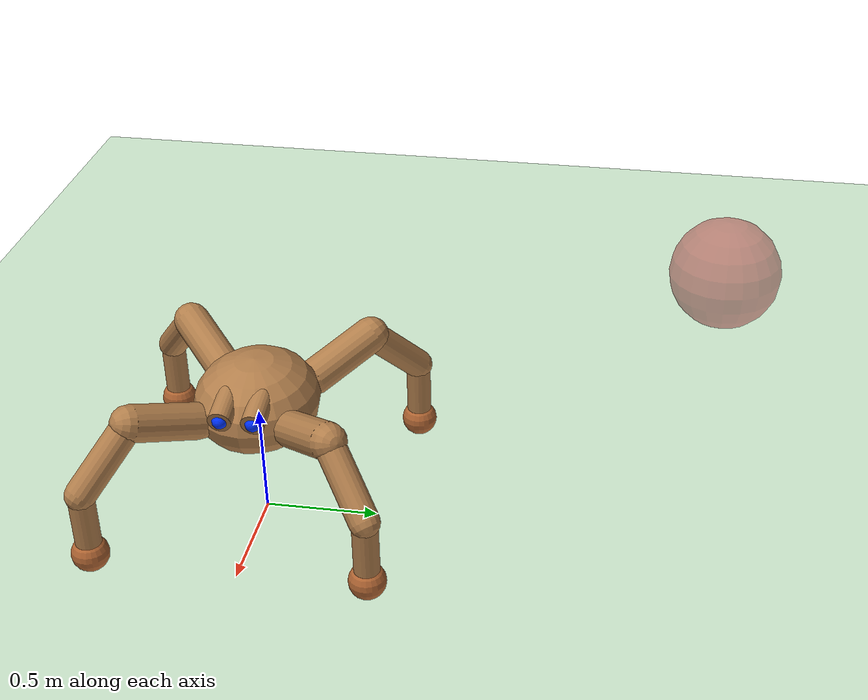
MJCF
<mujoco model="quadruped">
  <asset>
    <texture name="grid" type="2d" builtin="checker" rgb1=".1 .2 .3" rgb2=".2 .3 .4" width="300" height="300" mark="edge" markrgb=".2 .3 .4"/>
    <material name="grid" texture="grid" texrepeat="1 1" texuniform="true" reflectance=".2"/>
    <material name="self" rgba=".7 .5 .3 1"/>
    <material name="self_default" rgba=".7 .5 .3 1"/>
    <material name="self_highlight" rgba="0 .5 .3 1"/>
    <material name="effector" rgba=".7 .4 .2 1"/>
    <material name="effector_default" rgba=".7 .4 .2 1"/>
    <material name="effector_highlight" rgba="0 .5 .3 1"/>
    <material name="decoration" rgba=".3 .5 .7 1"/>
    <material name="eye" rgba="0 .2 1 1"/>
    <material name="target" rgba=".6 .3 .3 1"/>
    <material name="target_default" rgba=".6 .3 .3 1"/>
    <material name="target_highlight" rgba=".6 .3 .3 .4"/>
    <material name="site" rgba=".5 .5 .5 .3"/>
  </asset>

  <visual>
    <map znear=".005" zfar="20"/>
  </visual>

  <option timestep=".005"/> <!-- Note that this is half the timestep of the ant. -->

  <default>
    <geom solimp=".9 .99 .003" solref=".01 1"/>
    <default class="body">
      <geom  type="capsule" size=".08" condim="1" material="self" density="500"/>
      <joint type="hinge" damping="30" armature=".01"
             limited="true" solimplimit="0 .99 .01"/>
      <default class="hip">
        <default class="yaw">
          <joint axis="0 0 1" range="-50 50"/>
        </default>
        <default class="pitch">
          <joint axis="0 1 0" range="-20 60"/>
        </default>
        <geom fromto="0 0 0 .3 0 .11"/>
      </default>
      <default class="knee">
        <joint axis="0 1 0" range="-60 50"/>
        <geom size=".065" fromto="0 0 0 .25 0 -.25"/>
      </default>
      <default class="ankle">
        <joint axis="0 1 0" range="-45 55"/>
        <geom size=".055" fromto="0 0 0 0 0 -.25"/>
      </default>
      <default class="toe">
        <geom type="sphere" size=".08" material="effector" friction="1.5"/>
        <site type="sphere" size=".084" material="site"  group="4"/>
      </default>
    </default>
    <default class="wall">
      <geom type="plane" material="decoration"/>
    </default>

    <default class="coupling">
      <equality solimp="0.95 0.99 0.01" solref=".005 .5"/>
    </default>

    <general ctrllimited="true" gainprm="1000" biasprm="0 -1000" biastype="affine" dyntype="filter" dynprm=".1"/>
    <default class="yaw_act">
      <general ctrlrange="-1 1"/>
    </default>
    <default class="lift_act">
      <general ctrlrange="-1 1.1"/>
    </default>
    <default class="extend_act">
      <general ctrlrange="-.8 .8"/>
    </default>
  </default>

  <asset>
    <texture name="ball" builtin="checker" mark="cross" width="151" height="151"
             rgb1="0.1 0.1 0.1" rgb2="0.9 0.9 0.9" markrgb="1 1 1"/>
    <material name="ball" texture="ball" />
  </asset>

  <asset>
    <texture builtin="gradient" height="100" rgb1="1 1 1" rgb2="0 0 0" type="skybox" width="100"/>
    <texture builtin="flat" height="1278" mark="cross" markrgb="1 1 1" name="texgeom" random="0.01" rgb1="0.8 0.6 0.4" rgb2="0.8 0.6 0.4" type="cube" width="127"/>
    <texture builtin="checker" height="100" name="texplane" rgb1="0 0 0" rgb2="0.8 0.8 0.8" type="2d" width="100"/>
    <material name="MatPlane" reflectance="0.5" shininess="1" specular="1" texrepeat="60 60" texture="texplane"/>
    <material name="geom" texture="texgeom" texuniform="true"/>
  </asset>

  <worldbody>
    <light cutoff="100" diffuse="1 1 1" dir="-0 0 -1.3" directional="true" exponent="1" pos="0 0 1.3" specular=".1 .1 .1"/>
    <geom conaffinity="1" condim="3" material="MatPlane" name="floor" pos="0 0 0" rgba="0.8 0.9 0.8 1" size="40 40 40" type="plane"/>
    <camera name="global"  pos="-10 10 10" xyaxes="-1 -1 0 1 0 1" mode="trackcom"/>

    <body name="torso" childclass="body" pos="0 0 .57">
      <freejoint name="root"/>

      <camera name="x"  pos="-1.7 0 1" xyaxes="0 -1 0 .75 0 1" mode="trackcom"/>
      <camera name="y"  pos="0 4 2" xyaxes="-1 0 0 0 -.5 1" mode="trackcom"/>
      <camera name="egocentric"  pos=".3 0 .11" xyaxes="0 -1 0 .4 0 1" fovy="60"/>
      <light name="light" pos="0 0 4" mode="trackcom"/>

      <geom name="eye_r" type="cylinder" size=".05"  fromto=".1 -.07 .12 .31 -.07 .08" mass="0"/>
      <site name="pupil_r" type="sphere" size=".033"  pos=".3 -.07 .08" zaxis="1 0 0" material="eye"/>
      <geom name="eye_l" type="cylinder" size=".05"  fromto=".1 .07 .12 .31 .07 .08" mass="0"/>
      <site name="pupil_l" type="sphere" size=".033"  pos=".3 .07 .08" zaxis="1 0 0" material="eye"/>
      <site name="workspace" type="sphere" size=".3 .3 .3"  material="site" pos=".8 0 -.2" group="3"/>

      <geom name="torso" type="ellipsoid" size=".3 .27 .2" density="1000"/>
      <site name="torso_touch" type="box" size=".26 .26 .26" rgba="0 0 1 0"/>
      <site name="torso" size=".05" rgba="1 0 0 1" />

      <body name="hip_front_left" pos=".2 .2 0" euler="0 0 45" childclass="hip">
        <joint name="yaw_front_left" class="yaw"/>
        <joint name="pitch_front_left" class="pitch"/>
        <geom name="thigh_front_left"/>
        <body name="knee_front_left" pos=".3 0 .11" childclass="knee">
          <joint name="knee_front_left"/>
          <geom name="shin_front_left"/>
          <body name="ankle_front_left" pos=".25 0 -.25" childclass="ankle">
            <joint name="ankle_front_left"/>
            <geom name="foot_front_left"/>
            <body name="toe_front_left" pos="0 0 -.3" childclass="toe">
              <geom name="toe_front_left"/>
              <site name="toe_front_left"/>
            </body>
          </body>
        </body>
      </body>

      <body name="hip_front_right" pos=".2 -.2 0" euler="0 0 -45" childclass="hip">
        <joint name="yaw_front_right" class="yaw"/>
        <joint name="pitch_front_right" class="pitch"/>
        <geom name="thigh_front_right"/>
        <body name="knee_front_right" pos=".3 0 .11" childclass="knee">
          <joint name="knee_front_right"/>
          <geom name="shin_front_right"/>
          <body name="ankle_front_right" pos=".25 0 -.25" childclass="ankle">
            <joint name="ankle_front_right"/>
            <geom name="foot_front_right"/>
            <body name="toe_front_right" pos="0 0 -.3" childclass="toe">
              <geom name="toe_front_right"/>
              <site name="toe_front_right"/>
            </body>
          </body>
        </body>
      </body>

      <body name="hip_back_right" pos="-.2 -.2 0" euler="0 0 -135" childclass="hip">
        <joint name="yaw_back_right" class="yaw"/>
        <joint name="pitch_back_right" class="pitch"/>
        <geom name="thigh_back_right"/>
        <body name="knee_back_right" pos=".3 0 .11" childclass="knee">
          <joint name="knee_back_right"/>
          <geom name="shin_back_right"/>
          <body name="ankle_back_right" pos=".25 0 -.25" childclass="ankle">
            <joint name="ankle_back_right"/>
            <geom name="foot_back_right"/>
            <body name="toe_back_right" pos="0 0 -.3" childclass="toe">
              <geom name="toe_back_right"/>
              <site name="toe_back_right"/>
            </body>
          </body>
        </body>
      </body>

      <body name="hip_back_left" pos="-.2 .2 0" euler="0 0 135" childclass="hip">
        <joint name="yaw_back_left" class="yaw"/>
        <joint name="pitch_back_left" class="pitch"/>
        <geom name="thigh_back_left"/>
        <body name="knee_back_left" pos=".3 0 .11" childclass="knee">
          <joint name="knee_back_left"/>
          <geom name="shin_back_left"/>
          <body name="ankle_back_left" pos=".25 0 -.25" childclass="ankle">
            <joint name="ankle_back_left"/>
            <geom name="foot_back_left"/>
            <body name="toe_back_left" pos="0 0 -.3" childclass="toe">
              <geom name="toe_back_left"/>
              <site name="toe_back_left"/>
            </body>
          </body>
        </body>
      </body>
    </body>

    <body name="skill" pos="-2 2 0.25">
      <geom conaffinity="0" contype="0" name="skill" pos="0 0 0" rgba="0.7 0.2 0.2 0.5" size=".3" type="sphere"/>
    </body>

  </worldbody>

  <tendon>
    <fixed name="coupling_front_left">
      <joint joint="pitch_front_left"      coef=".333"/>
      <joint joint="knee_front_left"       coef=".333"/>
      <joint joint="ankle_front_left"      coef=".333"/>
    </fixed>
    <fixed name="coupling_front_right">
      <joint joint="pitch_front_right"      coef=".333"/>
      <joint joint="knee_front_right"       coef=".333"/>
      <joint joint="ankle_front_right"      coef=".333"/>
    </fixed>
    <fixed name="coupling_back_right">
      <joint joint="pitch_back_right"      coef=".333"/>
      <joint joint="knee_back_right"       coef=".333"/>
      <joint joint="ankle_back_right"      coef=".333"/>
    </fixed>
    <fixed name="coupling_back_left">
      <joint joint="pitch_back_left"      coef=".333"/>
      <joint joint="knee_back_left"       coef=".333"/>
      <joint joint="ankle_back_left"      coef=".333"/>
    </fixed>

    <fixed name="extend_front_left">
      <joint joint="pitch_front_left"      coef=".25"/>
      <joint joint="knee_front_left"       coef="-.5"/>
      <joint joint="ankle_front_left"      coef=".25"/>
    </fixed>
    <fixed name="lift_front_left">
      <joint joint="pitch_front_left"      coef=".5"/>
      <joint joint="ankle_front_left"      coef="-.5"/>
    </fixed>

    <fixed name="extend_front_right">
      <joint joint="pitch_front_right"     coef=".25"/>
      <joint joint="knee_front_right"      coef="-.5"/>
      <joint joint="ankle_front_right"     coef=".25"/>
    </fixed>
    <fixed name="lift_front_right">
      <joint joint="pitch_front_right"     coef=".5"/>
      <joint joint="ankle_front_right"     coef="-.5"/>
    </fixed>

    <fixed name="extend_back_right">
      <joint joint="pitch_back_right"     coef=".25"/>
      <joint joint="knee_back_right"      coef="-.5"/>
      <joint joint="ankle_back_right"     coef=".25"/>
    </fixed>
    <fixed name="lift_back_right">
      <joint joint="pitch_back_right"     coef=".5"/>
      <joint joint="ankle_back_right"     coef="-.5"/>
    </fixed>

    <fixed name="extend_back_left">
      <joint joint="pitch_back_left"      coef=".25"/>
      <joint joint="knee_back_left"       coef="-.5"/>
      <joint joint="ankle_back_left"      coef=".25"/>
    </fixed>
    <fixed name="lift_back_left">
      <joint joint="pitch_back_left"     coef=".5"/>
      <joint joint="ankle_back_left"     coef="-.5"/>
    </fixed>
  </tendon>

  <equality>
    <tendon name="coupling_front_left" tendon1="coupling_front_left" class="coupling"/>
    <tendon name="coupling_front_right" tendon1="coupling_front_right" class="coupling"/>
    <tendon name="coupling_back_right" tendon1="coupling_back_right" class="coupling"/>
    <tendon name="coupling_back_left" tendon1="coupling_back_left" class="coupling"/>
  </equality>

  <actuator>
    <general name="yaw_front_left" class="yaw_act" joint="yaw_front_left"/>
    <general name="lift_front_left" class="lift_act" tendon="lift_front_left"/>
    <general name="extend_front_left" class="extend_act" tendon="extend_front_left"/>
    <general name="yaw_front_right" class="yaw_act" joint="yaw_front_right"/>
    <general name="lift_front_right" class="lift_act" tendon="lift_front_right"/>
    <general name="extend_front_right" class="extend_act" tendon="extend_front_right"/>
    <general name="yaw_back_right" class="yaw_act" joint="yaw_back_right"/>
    <general name="lift_back_right" class="lift_act" tendon="lift_back_right"/>
    <general name="extend_back_right" class="extend_act" tendon="extend_back_right"/>
    <general name="yaw_back_left" class="yaw_act" joint="yaw_back_left"/>
    <general name="lift_back_left" class="lift_act" tendon="lift_back_left"/>
    <general name="extend_back_left" class="extend_act" tendon="extend_back_left"/>
  </actuator>

</mujoco>
